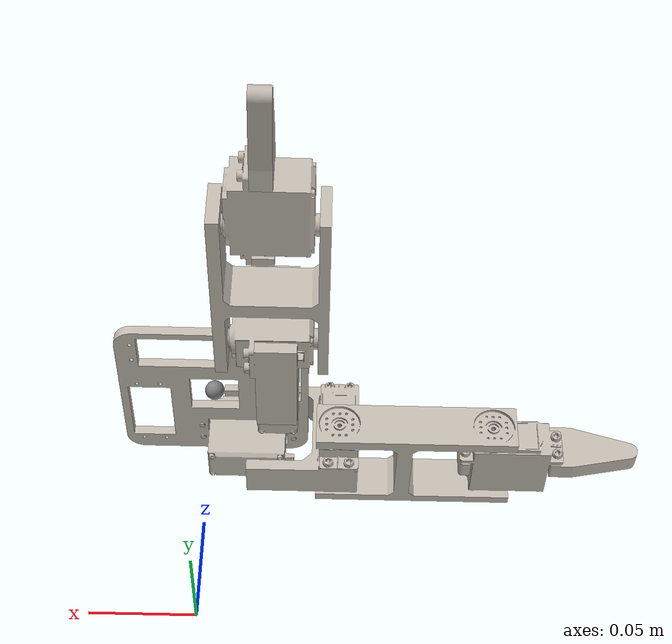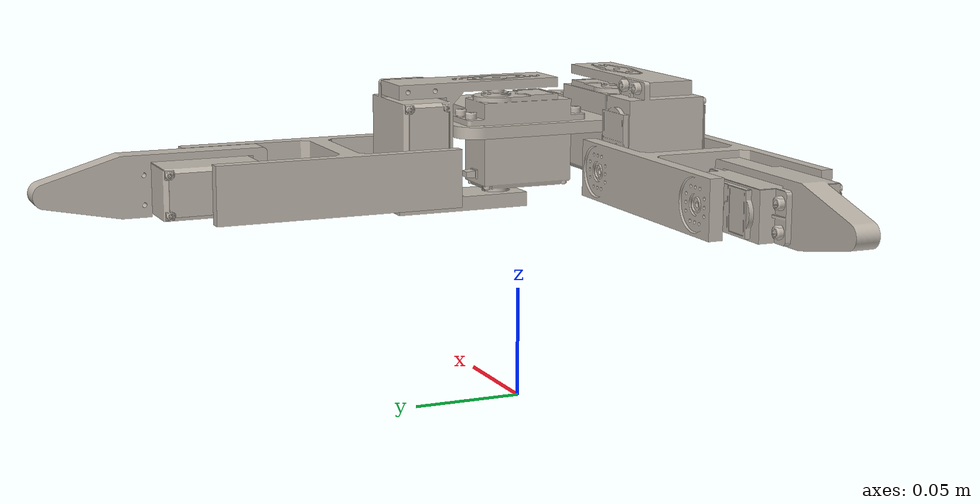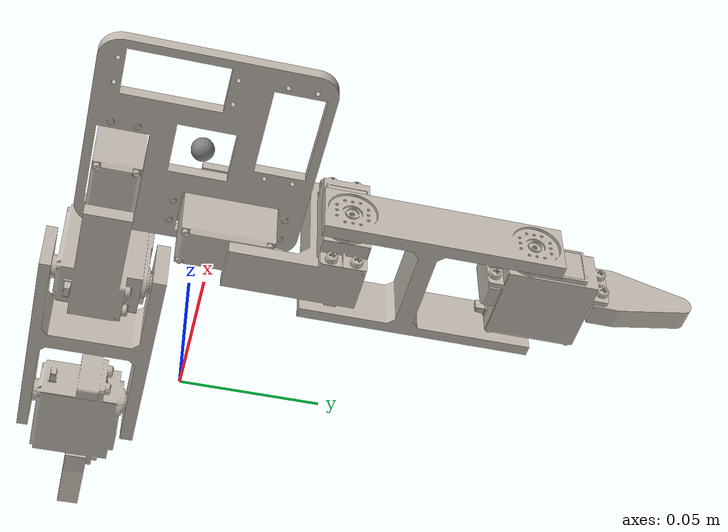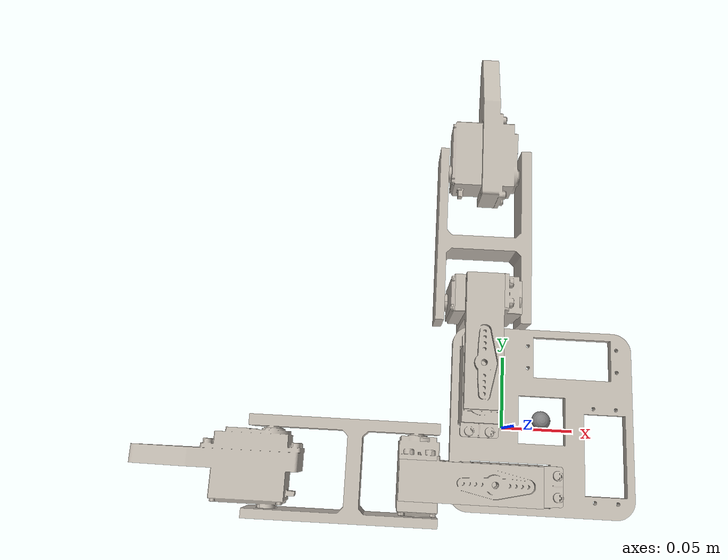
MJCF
<mujoco>
    <compiler angle="degree" meshdir="./mesh" texturedir="./textures" />

    <option integrator="implicitfast"  cone="elliptic"/>

    <default>
        <default class="quadruped">
            <geom type="mesh" material="robot_material" friction="0.6" margin="0.001"/>
            <joint axis="0 0 1" type="hinge" damping="0.1" armature="0.001"/>
            <position   ctrlrange="-1 1"
                        forcerange="-1.71 1.71"
                        kp="100"
                        kv="1"
                        timeconst="0.01"
                        ctrllimited="true"
                        forcelimited="true"
            />

            <!-- Gear ratio and adapted force range is set to map the control range from -1, 1 to -pi/2, pi/2 -->
            <!-- Original force range is -1.1, 1.1  with gear ratio to 1 and range from -pi/, pi/2 -->
            <!-- Damping controls actual speed of the servo (mesurements are needed to set this value) -->
            <!-- With this setup damping indicates the speed of the servo in s/60° -->

            <default class="hip">
                <joint range="-45 45" ref="-45"/>
                <position ctrlrange="-0.5 0.5" gear="0.64"/>
            </default>

            <default class="knee">
                <joint range="-45 120" ref="37.5"/>
                <position ctrlrange="-0.91 0.91" gear="0.64"/>
            </default>

            <default class="ankle">
                <joint range="-90 90" ref="0"/>
                <position ctrlrange="-1 1" gear="0.64"/>
            </default>

            <default class="servo">
                <geom mesh="SERVO" mass="0.056"/>
            </default>

            <default class="frame">
                <geom mesh="FRAME" mass="0.018"/>
            </default>

            <default class="fema">
                <geom mesh="FEMA" mass="0.022"/>
            </default>

            <default class="shin">
                <geom mesh="SHIN" mass="0.013"/>
            </default>

            <default class="foot">
                <geom mesh="FOOT" mass="0.07"/>
            </default>
        </default>
    </default>

    <worldbody>
        <body name="FRAME" pos="0.0 0.0 0.13" childclass="quadruped">
            <joint name="free_joint" type="free"/>
            <geom name="FRAME geom" class="frame"/>
            <geom name="hip_servo_1 geom" class="servo" group="1" pos="-0.0334 0.0163 -0.0046"/>
            <geom name="hip_servo_2 geom" class="servo" group="2" pos="-0.0163 -0.0334 -0.0046" euler="0 0 90"/>
            <geom name="hip_servo_3 geom" class="servo" group="3" pos="0.0334 -0.0163 -0.0046" euler="0 0 180"/>
            <geom name="hip_servo_4 geom" class="servo" group="4" pos="0.0163 0.0334 -0.0046" euler="0 0 -90"/>
            <site name="FRAME"/>

            <body name="fema_1" pos="-0.0336 0.02700 0.0195">
                <joint name="hip_1" class="hip"/>
                <geom name="fema_1 geom" class="fema" group="1"/>
                <geom name="knee_servo_1 geom" class="servo" group="1" pos="0.003 0.0381 -0.0251" quat="0.5 -0.5 0.5 -0.5"/>

                <body name="shin_1" pos="0.0269 0.0381 -0.0358" euler="0 90 0">
                    <joint name="knee_1" class="knee"/>
                    <geom name="shin_1 geom" class="shin" group="1"/>

                    <body name="foot_1" pos="0.0 0.0798 -0.0006">
                        <joint name="ankle_1" class="ankle"/>
                        <geom name="foot_1 geom" class="foot" group="1"/>
                        <geom name="ankle_servo_1 geom" class="servo" group="1" pos="0.0 0.011 -0.0234" euler="0 0 180"/>

                    </body>
                </body>
            </body>

            <body name="fema_2" pos="-0.02700 -0.0336 0.0195" euler="0 0 90">
                <joint name="hip_2" class="hip"/>
                <geom name="fema_2 geom" class="fema" group="2"/>
                <geom name="knee_servo_2 geom" class="servo" group="2" pos="0.003 0.0381 -0.0251" quat="0.5 -0.5 0.5 -0.5"/>

                <body name="shin_2" pos="0.0269 0.0381 -0.0358" euler="0 90 0">
                    <joint name="knee_2" class="knee"/>
                    <geom name="shin_2 geom" class="shin" group="2"/>

                    <body name="foot_2" pos="0.0 0.0798 -0.0006">
                        <joint name="ankle_2" class="ankle"/>
                        <geom name="foot_2 geom" class="foot" group="2"/>
                        <geom name="ankle_servo_2 geom" class="servo" group="2" pos="0.0 0.011 -0.0234" euler="0 0 180"/>

                    </body>
                </body>
            </body>

            <body name="fema_3" pos="0.0336 -0.02700 0.0195" euler="0 0 180">
                <joint name="hip_3" class="hip"/>
                <geom name="fema_3 geom" class="fema" group="3"/>
                <geom name="knee_servo_3 geom" class="servo" group="3" pos="0.003 0.0381 -0.0251" quat="0.5 -0.5 0.5 -0.5"/>

                <body name="shin_3" pos="0.0269 0.0381 -0.0358" euler="0 90 0">
                    <joint name="knee_3" class="knee"/>
                    <geom name="shin_3 geom" class="shin" group="3"/>

                    <body name="foot_3" pos="0.0 0.0798 -0.0006">
                        <joint name="ankle_3" class="ankle"/>
                        <geom name="foot_3 geom" class="foot" group="3"/>
                        <geom name="ankle_servo_3 geom" class="servo" group="3" pos="0.0 0.011 -0.0234" euler="0 0 180"/>

                    </body>
                </body>
            </body>

            <body name="fema_4" pos="0.0270 0.0336 0.0195" euler="0 0 -90">
                <joint name="hip_4" class="hip"/>
                <geom name="fema_4 geom" class="fema" group="4"/>
                <geom name="knee_servo_4 geom" class="servo" group="4" pos="0.003 0.0381 -0.0251" quat="0.5 -0.5 0.5 -0.5"/>

                <body name="shin_4" pos="0.0269 0.0381 -0.0358" euler="0 90 0">
                    <joint name="knee_4" class="knee"/>
                    <geom name="shin_4 geom" class="shin" group="4"/>

                    <body name="foot_4" pos="0.0 0.0798 -0.0006">
                        <joint name="ankle_4" class="ankle"/>
                        <geom name="foot_4 geom" class="foot" group="4"/>
                        <geom name="ankle_servo_4 geom" class="servo" group="4" pos="0.0 0.011 -0.0234" euler="0 0 180"/>

                    </body>
                </body>
            </body>
        </body>
    </worldbody>

    <asset>
        <mesh name="FRAME" file="FRAME.obj"/>
        <mesh name="FEMA" file="FEMA.obj"/>
        <mesh name="SHIN" file="SHIN.obj"/>
        <mesh name="FOOT" file="FOOT.obj"/>
        <mesh name="SERVO" file="SERVO.obj"/>

        <texture name="robot_texture" type="2d" file="colors.png"/>
        <material name="robot_material" texture="robot_texture" texuniform="true" rgba="1 1 1 1"/>
    </asset>

    <actuator>
        <position joint="hip_1" class="hip"/>
        <position joint="knee_1" class="knee"/>
        <position joint="ankle_1" class="ankle"/>

        <position joint="hip_2" class="hip"/>
        <position joint="knee_2" class="knee"/>
        <position joint="ankle_2" class="ankle"/>

        <position joint="hip_3" class="hip"/>
        <position joint="knee_3" class="knee"/>
        <position joint="ankle_3" class="ankle"/>

        <position joint="hip_4" class="hip"/>
        <position joint="knee_4" class="knee"/>
        <position joint="ankle_4" class="ankle"/>
    </actuator>

    <sensor>
        <!-- Position sensors for the joints -->

        <!-- Indices 0, 1, 2 -->
        <jointpos joint="hip_1" name="hip_1_sensor"/>
        <jointpos joint="knee_1" name="knee_1_sensor"/>
        <jointpos joint="ankle_1" name="ankle_1_sensor"/>

        <!-- Indices 3, 4, 5 -->
        <jointpos joint="hip_2" name="hip_2_sensor"/>
        <jointpos joint="knee_2" name="knee_2_sensor"/>
        <jointpos joint="ankle_2" name="ankle_2_sensor"/>

        <!-- Indices 6, 7, 8 -->
        <jointpos joint="hip_3" name="hip_3_sensor"/>
        <jointpos joint="knee_3" name="knee_3_sensor"/>
        <jointpos joint="ankle_3" name="ankle_3_sensor"/>

        <!-- Indices 9, 10, 11 -->
        <jointpos joint="hip_4" name="hip_4_sensor"/>
        <jointpos joint="knee_4" name="knee_4_sensor"/>
        <jointpos joint="ankle_4" name="ankle_4_sensor"/>

        <!-- Accelerometer and gyroscope sensors for the body -->

        <!-- Indices 12, 13, 14 -->
        <accelerometer noise="0.01" site="FRAME" name="body_accel"/>
        <!-- Indices 15, 16, 17 -->
        <gyro noise="0.01" site="FRAME" name="body_gyro"/>
        <!-- Indices 18, 19, 20 -->
        <velocimeter noise="0.01" site="FRAME" name="body_vel"/>

        <!-- Position sensor for the body -->

        <!-- Indices 21, 22, 23 -->
        <framepos objtype="site" objname="FRAME" name="body_pos"/>
         <!-- Indices 24, 25, 26, 27 -->
        <framequat objtype="site" objname="FRAME" name="body_quat"/>
        <!-- Indices 28, 29, 30 -->
        <framelinvel objtype="site" objname="FRAME" name="body_linvel"/>
        <!-- Indices 31, 32, 33 -->
        <framexaxis objtype="site" objname="FRAME" name="body_xaxis"/>
        <!-- Indices 34, 35, 36 -->
        <framezaxis objtype="site" objname="FRAME" name="body_zaxis"/>

    </sensor>
</mujoco>
